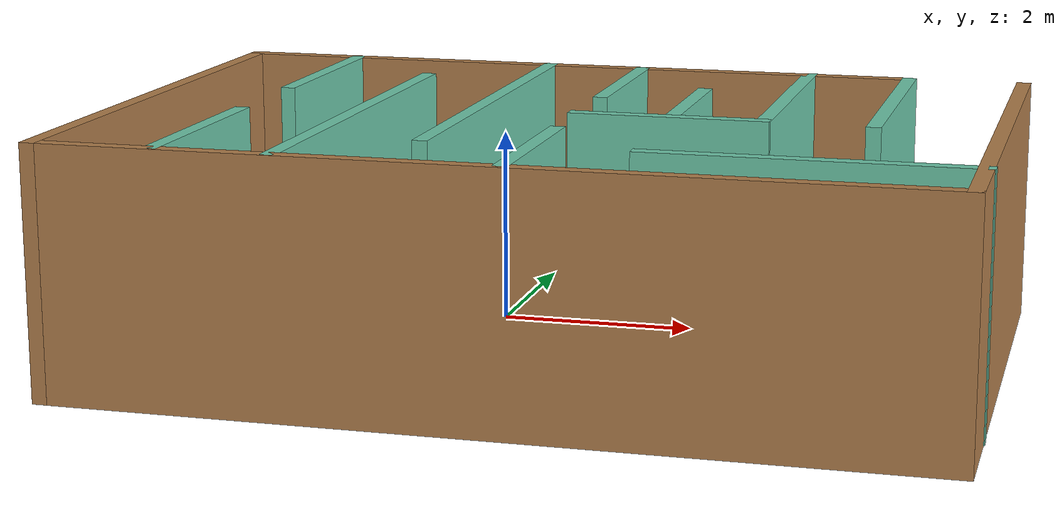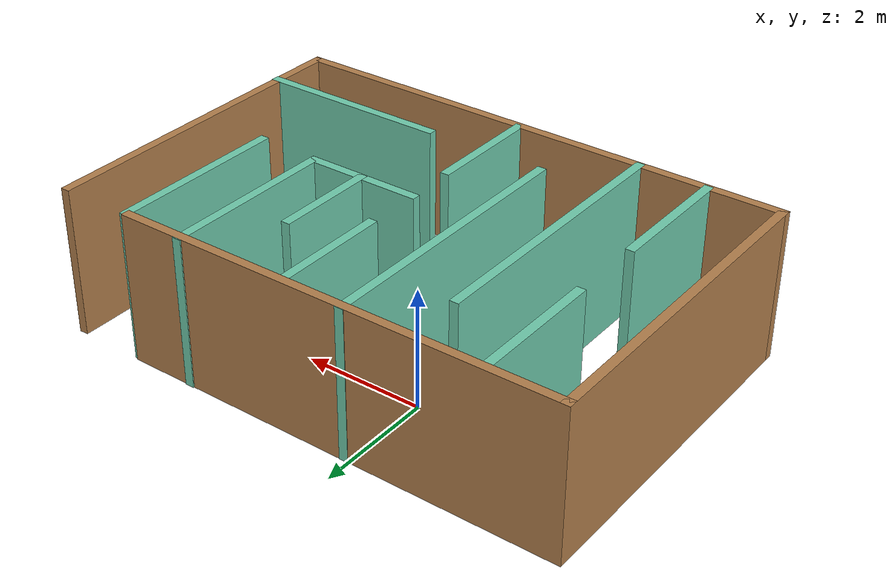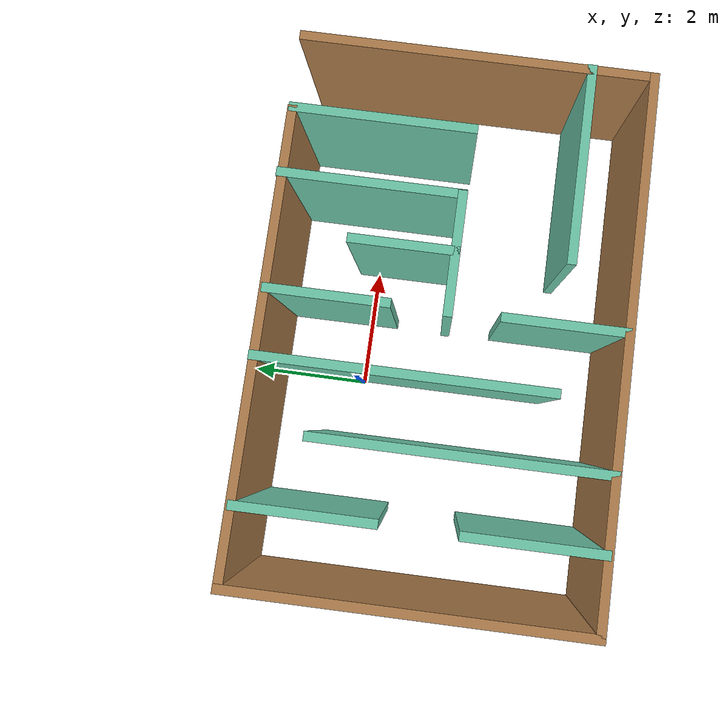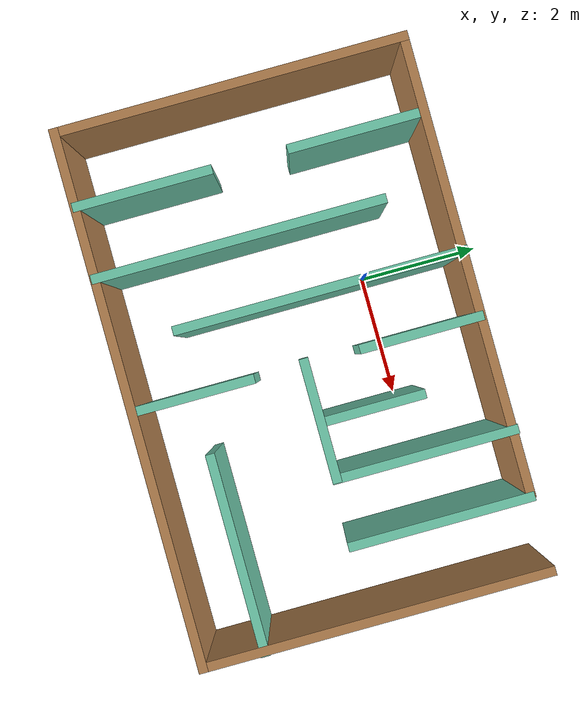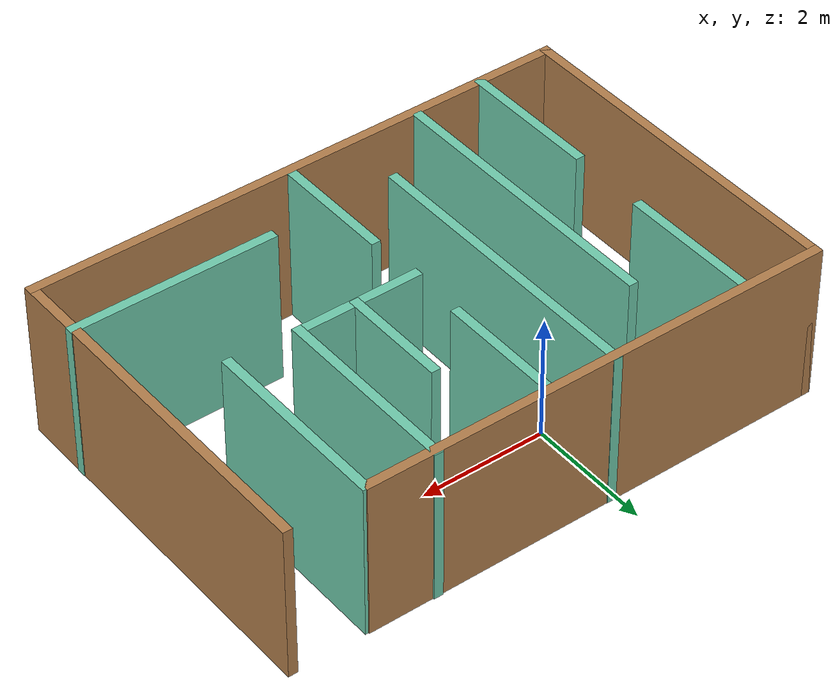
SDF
<?xml version='1.0'?>
<sdf version='1.6'>
  <model name='Small_Assignmnet_room'>
    <pose frame=''>0.945083 -1.30375 0 0 -0 0</pose>
    <link name='Wall_11'>
      <collision name='Wall_11_Collision'>
        <geometry>
          <box>
            <size>2.25 0.15 2.5</size>
          </box>
        </geometry>
        <pose frame=''>0 0 1.25 0 -0 0</pose>
      </collision>
      <visual name='Wall_11_Visual'>
        <pose frame=''>0 0 1.25 0 -0 0</pose>
        <geometry>
          <box>
            <size>2.25 0.15 2.5</size>
          </box>
        </geometry>
        <material>
          <script>
            <uri>file://media/materials/scripts/gazebo.material</uri>
            <name>Gazebo/Grey</name>
          </script>
          <ambient>0.435294 0.796078 0.67451 1</ambient>
        </material>
        <meta>
          <layer>0</layer>
        </meta>
      </visual>
      <pose frame=''>-3.11405 -1.73213 0 0 -0 1.5708</pose>
    </link>
    <link name='Wall_13'>
      <collision name='Wall_13_Collision'>
        <geometry>
          <box>
            <size>4.75 0.15 2.5</size>
          </box>
        </geometry>
        <pose frame=''>0 0 1.25 0 -0 0</pose>
      </collision>
      <visual name='Wall_13_Visual'>
        <pose frame=''>0 0 1.25 0 -0 0</pose>
        <geometry>
          <box>
            <size>4.75 0.15 2.5</size>
          </box>
        </geometry>
        <material>
          <script>
            <uri>file://media/materials/scripts/gazebo.material</uri>
            <name>Gazebo/Grey</name>
          </script>
          <ambient>0.435294 0.796078 0.67451 1</ambient>
        </material>
        <meta>
          <layer>0</layer>
        </meta>
      </visual>
      <pose frame=''>-1.96187 -0.500036 0 0 -0 1.5708</pose>
    </link>
    <link name='Wall_16'>
      <collision name='Wall_16_Collision'>
        <geometry>
          <box>
            <size>4.75 0.15 2.5</size>
          </box>
        </geometry>
        <pose frame=''>0 0 1.25 0 -0 0</pose>
      </collision>
      <visual name='Wall_16_Visual'>
        <pose frame=''>0 0 1.25 0 -0 0</pose>
        <geometry>
          <box>
            <size>4.75 0.15 2.5</size>
          </box>
        </geometry>
        <material>
          <script>
            <uri>file://media/materials/scripts/gazebo.material</uri>
            <name>Gazebo/Grey</name>
          </script>
          <ambient>0.435294 0.796078 0.67451 1</ambient>
        </material>
        <meta>
          <layer>0</layer>
        </meta>
      </visual>
      <pose frame=''>-0.859071 0.504207 0 0 -0 -1.5708</pose>
    </link>
    <link name='Wall_18'>
      <collision name='Wall_18_Collision'>
        <geometry>
          <box>
            <size>2 0.15 2.5</size>
          </box>
        </geometry>
        <pose frame=''>0 0 1.25 0 -0 0</pose>
      </collision>
      <visual name='Wall_18_Visual'>
        <pose frame=''>0 0 1.25 0 -0 0</pose>
        <geometry>
          <box>
            <size>2 0.15 2.5</size>
          </box>
        </geometry>
        <material>
          <script>
            <uri>file://media/materials/scripts/gazebo.material</uri>
            <name>Gazebo/Grey</name>
          </script>
          <ambient>0.435294 0.796078 0.67451 1</ambient>
        </material>
        <meta>
          <layer>0</layer>
        </meta>
      </visual>
      <pose frame=''>0.187717 1.84431 0 0 -0 -1.5708</pose>
    </link>
    <link name='Wall_2'>
      <collision name='Wall_2_Collision'>
        <geometry>
          <box>
            <size>8.75 0.15 2.5</size>
          </box>
        </geometry>
        <pose frame=''>0 0 1.25 0 -0 0</pose>
      </collision>
      <visual name='Wall_2_Visual'>
        <pose frame=''>0 0 1.25 0 -0 0</pose>
        <geometry>
          <box>
            <size>8.75 0.15 2.5</size>
          </box>
        </geometry>
        <material>
          <script>
            <uri>file://media/materials/scripts/gazebo.material</uri>
            <name>Gazebo/Wood</name>
          </script>
          <ambient>1 1 1 1</ambient>
        </material>
        <meta>
          <layer>0</layer>
        </meta>
      </visual>
      <pose frame=''>-0.005083 -2.81625 0 0 -0 0</pose>
    </link>
    <link name='Wall_20'>
      <collision name='Wall_20_Collision'>
        <geometry>
          <box>
            <size>2 0.15 2.5</size>
          </box>
        </geometry>
        <pose frame=''>0 0 1.25 0 -0 0</pose>
      </collision>
      <visual name='Wall_20_Visual'>
        <pose frame=''>0 0 1.25 0 -0 0</pose>
        <geometry>
          <box>
            <size>2 0.15 2.5</size>
          </box>
        </geometry>
        <material>
          <script>
            <uri>file://media/materials/scripts/gazebo.material</uri>
            <name>Gazebo/Grey</name>
          </script>
          <ambient>0.435294 0.796078 0.67451 1</ambient>
        </material>
        <meta>
          <layer>0</layer>
        </meta>
      </visual>
      <pose frame=''>0.187717 -1.84203 0 0 -0 1.5708</pose>
    </link>
    <link name='Wall_22'>
      <collision name='Wall_22_Collision'>
        <geometry>
          <box>
            <size>2 0.15 2.5</size>
          </box>
        </geometry>
        <pose frame=''>0 0 1.25 0 -0 0</pose>
      </collision>
      <visual name='Wall_22_Visual'>
        <pose frame=''>0 0 1.25 0 -0 0</pose>
        <geometry>
          <box>
            <size>2 0.15 2.5</size>
          </box>
        </geometry>
        <material>
          <script>
            <uri>file://media/materials/scripts/gazebo.material</uri>
            <name>Gazebo/Grey</name>
          </script>
          <ambient>0.435294 0.796078 0.67451 1</ambient>
        </material>
        <meta>
          <layer>0</layer>
        </meta>
      </visual>
      <pose frame=''>1.08946 -0.033751 0 0 -0 0</pose>
    </link>
    <link name='Wall_23'>
      <collision name='Wall_23_Collision'>
        <geometry>
          <box>
            <size>3 0.15 2.5</size>
          </box>
        </geometry>
        <pose frame=''>0 0 1.25 0 -0 0</pose>
      </collision>
      <visual name='Wall_23_Visual'>
        <pose frame=''>0 0 1.25 0 -0 0</pose>
        <geometry>
          <box>
            <size>3 0.15 2.5</size>
          </box>
        </geometry>
        <material>
          <script>
            <uri>file://media/materials/scripts/gazebo.material</uri>
            <name>Gazebo/Grey</name>
          </script>
          <ambient>0.435294 0.796078 0.67451 1</ambient>
        </material>
        <meta>
          <layer>0</layer>
        </meta>
      </visual>
      <pose frame=''>2.02609 1.39125 0 0 -0 1.5708</pose>
    </link>
    <link name='Wall_25'>
      <collision name='Wall_25_Collision'>
        <geometry>
          <box>
            <size>1.75 0.15 2.5</size>
          </box>
        </geometry>
        <pose frame=''>0 0 1.25 0 -0 0</pose>
      </collision>
      <visual name='Wall_25_Visual'>
        <pose frame=''>0 0 1.25 0 -0 0</pose>
        <geometry>
          <box>
            <size>1.75 0.15 2.5</size>
          </box>
        </geometry>
        <material>
          <script>
            <uri>file://media/materials/scripts/gazebo.material</uri>
            <name>Gazebo/Grey</name>
          </script>
          <ambient>0.435294 0.796078 0.67451 1</ambient>
        </material>
        <meta>
          <layer>0</layer>
        </meta>
      </visual>
      <pose frame=''>1.1182 0.77788 0 0 -0 1.5708</pose>
    </link>
    <link name='Wall_27'>
      <collision name='Wall_27_Collision'>
        <geometry>
          <box>
            <size>3 0.15 2.5</size>
          </box>
        </geometry>
        <pose frame=''>0 0 1.25 0 -0 0</pose>
      </collision>
      <visual name='Wall_27_Visual'>
        <pose frame=''>0 0 1.25 0 -0 0</pose>
        <geometry>
          <box>
            <size>3 0.15 2.5</size>
          </box>
        </geometry>
        <material>
          <script>
            <uri>file://media/materials/scripts/gazebo.material</uri>
            <name>Gazebo/Grey</name>
          </script>
          <ambient>0.435294 0.796078 0.67451 1</ambient>
        </material>
        <meta>
          <layer>0</layer>
        </meta>
      </visual>
      <pose frame=''>3.09546 1.35594 0 0 -0 -1.5708</pose>
    </link>
    <link name='Wall_29'>
      <collision name='Wall_29_Collision'>
        <geometry>
          <box>
            <size>5.75 0.15 2.5</size>
          </box>
        </geometry>
        <pose frame=''>0 0 1.25 0 -0 0</pose>
      </collision>
      <visual name='Wall_29_Visual'>
        <pose frame=''>0 0 1.25 0 -0 0</pose>
        <geometry>
          <box>
            <size>5.75 0.15 2.5</size>
          </box>
        </geometry>
        <material>
          <script>
            <uri>file://media/materials/scripts/gazebo.material</uri>
            <name>Gazebo/Wood</name>
          </script>
          <ambient>1 1 1 1</ambient>
        </material>
        <meta>
          <layer>0</layer>
        </meta>
      </visual>
      <pose frame=''>4.29492 -0.016249 0 0 -0 1.5708</pose>
    </link>
    <link name='Wall_31'>
      <collision name='Wall_31_Collision'>
        <geometry>
          <box>
            <size>3.25 0.15 2.5</size>
          </box>
        </geometry>
        <pose frame=''>0 0 1.25 0 -0 0</pose>
      </collision>
      <visual name='Wall_31_Visual'>
        <pose frame=''>0 0 1.25 0 -0 0</pose>
        <geometry>
          <box>
            <size>3.25 0.15 2.5</size>
          </box>
        </geometry>
        <material>
          <script>
            <uri>file://media/materials/scripts/gazebo.material</uri>
            <name>Gazebo/Grey</name>
          </script>
          <ambient>0.435294 0.796078 0.67451 1</ambient>
        </material>
        <meta>
          <layer>0</layer>
        </meta>
      </visual>
      <pose frame=''>2.75508 -1.82492 0 0 -0 3.14159</pose>
    </link>
    <link name='Wall_5'>
      <collision name='Wall_5_Collision'>
        <geometry>
          <box>
            <size>5.76323 0.15 2.5</size>
          </box>
        </geometry>
        <pose frame=''>0 0 1.25 0 -0 0</pose>
      </collision>
      <visual name='Wall_5_Visual'>
        <pose frame=''>0 0 1.25 0 -0 0</pose>
        <geometry>
          <box>
            <size>5.76323 0.15 2.5</size>
          </box>
        </geometry>
        <material>
          <script>
            <uri>file://media/materials/scripts/gazebo.material</uri>
            <name>Gazebo/Wood</name>
          </script>
          <ambient>1 1 1 1</ambient>
        </material>
        <meta>
          <layer>0</layer>
        </meta>
      </visual>
      <pose frame=''>-4.30508 -0.009636 0 0 -0 1.5708</pose>
    </link>
    <link name='Wall_7'>
      <collision name='Wall_7_Collision'>
        <geometry>
          <box>
            <size>7.5 0.15 2.5</size>
          </box>
        </geometry>
        <pose frame=''>0 0 1.25 0 -0 0</pose>
      </collision>
      <visual name='Wall_7_Visual'>
        <pose frame=''>0 0 1.25 0 -0 0</pose>
        <geometry>
          <box>
            <size>7.5 0.15 2.5</size>
          </box>
        </geometry>
        <material>
          <script>
            <uri>file://media/materials/scripts/gazebo.material</uri>
            <name>Gazebo/Wood</name>
          </script>
          <ambient>1 1 1 1</ambient>
        </material>
        <meta>
          <layer>0</layer>
        </meta>
      </visual>
      <pose frame=''>-0.630083 2.79698 0 0 -0 0</pose>
    </link>
    <link name='Wall_9'>
      <collision name='Wall_9_Collision'>
        <geometry>
          <box>
            <size>2.25 0.15 2.5</size>
          </box>
        </geometry>
        <pose frame=''>0 0 1.25 0 -0 0</pose>
      </collision>
      <visual name='Wall_9_Visual'>
        <pose frame=''>0 0 1.25 0 -0 0</pose>
        <geometry>
          <box>
            <size>2.25 0.15 2.5</size>
          </box>
        </geometry>
        <material>
          <script>
            <uri>file://media/materials/scripts/gazebo.material</uri>
            <name>Gazebo/Grey</name>
          </script>
          <ambient>0.435294 0.796078 0.67451 1</ambient>
        </material>
        <meta>
          <layer>0</layer>
        </meta>
      </visual>
      <pose frame=''>-3.09884 1.71906 0 0 -0 -1.5708</pose>
    </link>
    <static>1</static>
  </model>
</sdf>
